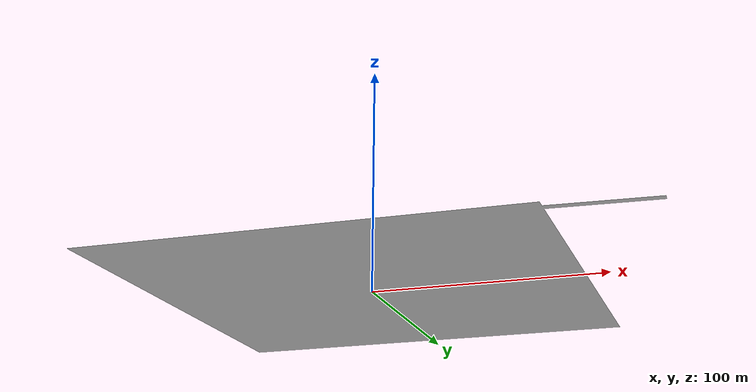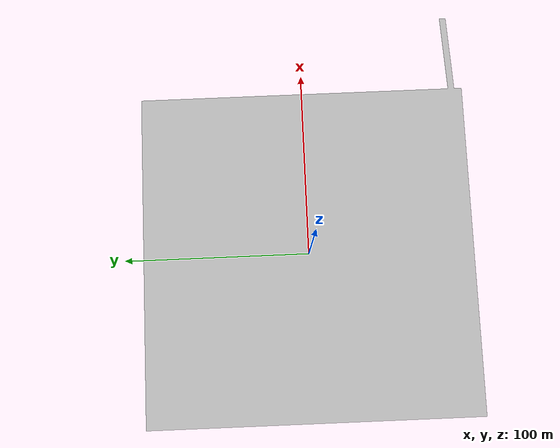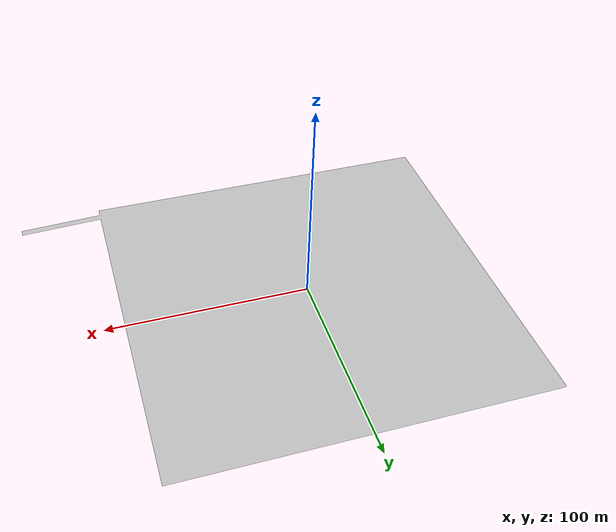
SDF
<?xml version="1.0" ?>
<sdf version="1.5">
  <model name="raceway">
    <static>true</static>
    <link name="link">
      <scale>3</scale>

      <collision name="collision">
        <pose>0 0 0 1.5707 0 0</pose>
        <geometry>
          <mesh>
            <uri>model://raceway/meshes/raceway.obj</uri>
          </mesh>
        </geometry>
      </collision>

      <visual name="visual">
        <pose>0 0 0 1.5707 0 0</pose>
        <geometry>
          <mesh>
            <uri>model://raceway/meshes/raceway.obj</uri>
          </mesh>
        </geometry>
      </visual>
    </link>
  </model>
</sdf>
